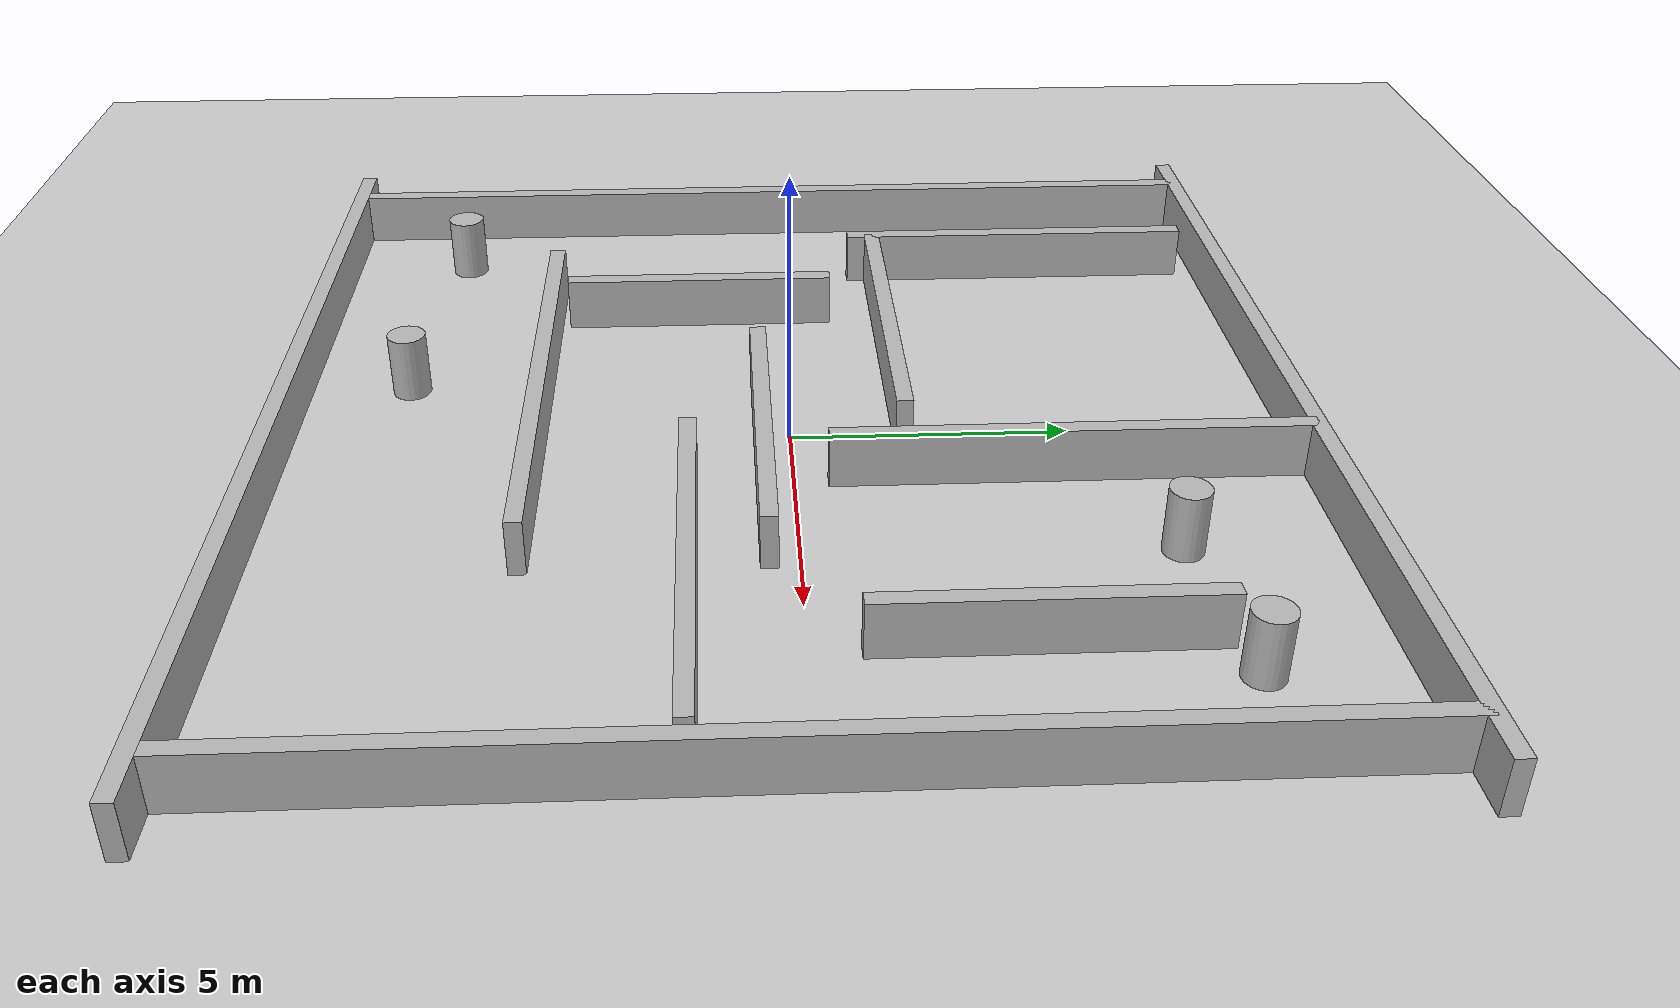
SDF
<?xml version="1.0" ?>
<sdf version="1.6">
  <world name="maze_ruins">
    <include><uri>model://ground_plane</uri></include>
    <include><uri>model://sun</uri></include>

    <physics name="default_physics" type="ode">
      <max_step_size>0.001</max_step_size>
      <real_time_update_rate>1000</real_time_update_rate>
    </physics>

    <model name="outer_walls">
      <static>true</static>
      <link name="walls">
        <collision name="north"><pose>0 9 0.5 0 0 0</pose><geometry><box><size>20 0.3 1.0</size></box></geometry></collision>
        <collision name="south"><pose>0 -9 0.5 0 0 0</pose><geometry><box><size>20 0.3 1.0</size></box></geometry></collision>
        <collision name="east"><pose>9 0 0.5 0 0 0</pose><geometry><box><size>0.3 18 1.0</size></box></geometry></collision>
        <collision name="west"><pose>-9 0 0.5 0 0 0</pose><geometry><box><size>0.3 18 1.0</size></box></geometry></collision>
        <visual name="north_v"><pose>0 9 0.5 0 0 0</pose><geometry><box><size>20 0.3 1.0</size></box></geometry></visual>
        <visual name="south_v"><pose>0 -9 0.5 0 0 0</pose><geometry><box><size>20 0.3 1.0</size></box></geometry></visual>
        <visual name="east_v"><pose>9 0 0.5 0 0 0</pose><geometry><box><size>0.3 18 1.0</size></box></geometry></visual>
        <visual name="west_v"><pose>-9 0 0.5 0 0 0</pose><geometry><box><size>0.3 18 1.0</size></box></geometry></visual>
      </link>
    </model>

    <model name="maze_segments">
      <static>true</static>
      <link name="segments">
        <collision name="m1"><pose>-6.5 5.0 0.5 0 0 0</pose><geometry><box><size>0.3 7.0 1.0</size></box></geometry></collision>
        <collision name="m2"><pose>-3.0 2.0 0.5 0 0 0</pose><geometry><box><size>7.0 0.3 1.0</size></box></geometry></collision>
        <collision name="m3"><pose>1.5 4.8 0.5 0 0 0</pose><geometry><box><size>0.3 8.4 1.0</size></box></geometry></collision>
        <collision name="m4"><pose>4.8 -1.8 0.5 0 0 0</pose><geometry><box><size>7.8 0.3 1.0</size></box></geometry></collision>
        <collision name="m5"><pose>-1.0 -4.5 0.5 0 0 0</pose><geometry><box><size>10.0 0.3 1.0</size></box></geometry></collision>
        <collision name="m6"><pose>-4.6 -1.6 0.5 0 0 0</pose><geometry><box><size>0.3 5.2 1.0</size></box></geometry></collision>
        <collision name="m7"><pose>6.2 3.6 0.5 0 0 0</pose><geometry><box><size>0.3 5.6 1.0</size></box></geometry></collision>
        <collision name="m8"><pose>0.8 -0.5 0.5 0 0 0</pose><geometry><box><size>6.4 0.3 1.0</size></box></geometry></collision>

        <visual name="m1v"><pose>-6.5 5.0 0.5 0 0 0</pose><geometry><box><size>0.3 7.0 1.0</size></box></geometry></visual>
        <visual name="m2v"><pose>-3.0 2.0 0.5 0 0 0</pose><geometry><box><size>7.0 0.3 1.0</size></box></geometry></visual>
        <visual name="m3v"><pose>1.5 4.8 0.5 0 0 0</pose><geometry><box><size>0.3 8.4 1.0</size></box></geometry></visual>
        <visual name="m4v"><pose>4.8 -1.8 0.5 0 0 0</pose><geometry><box><size>7.8 0.3 1.0</size></box></geometry></visual>
        <visual name="m5v"><pose>-1.0 -4.5 0.5 0 0 0</pose><geometry><box><size>10.0 0.3 1.0</size></box></geometry></visual>
        <visual name="m6v"><pose>-4.6 -1.6 0.5 0 0 0</pose><geometry><box><size>0.3 5.2 1.0</size></box></geometry></visual>
        <visual name="m7v"><pose>6.2 3.6 0.5 0 0 0</pose><geometry><box><size>0.3 5.6 1.0</size></box></geometry></visual>
        <visual name="m8v"><pose>0.8 -0.5 0.5 0 0 0</pose><geometry><box><size>6.4 0.3 1.0</size></box></geometry></visual>
      </link>
    </model>

    <model name="ruins_pillars">
      <static>true</static>
      <link name="pillars">
        <collision name="p1"><pose>-7.2 -6.5 0.6 0 0 0</pose><geometry><cylinder><radius>0.35</radius><length>1.2</length></cylinder></geometry></collision>
        <collision name="p2"><pose>7.0 6.6 0.6 0 0 0</pose><geometry><cylinder><radius>0.35</radius><length>1.2</length></cylinder></geometry></collision>
        <collision name="p3"><pose>3.8 6.2 0.6 0 0 0</pose><geometry><cylinder><radius>0.35</radius><length>1.2</length></cylinder></geometry></collision>
        <collision name="p4"><pose>-2.0 -7.0 0.6 0 0 0</pose><geometry><cylinder><radius>0.35</radius><length>1.2</length></cylinder></geometry></collision>
        <visual name="p1v"><pose>-7.2 -6.5 0.6 0 0 0</pose><geometry><cylinder><radius>0.35</radius><length>1.2</length></cylinder></geometry></visual>
        <visual name="p2v"><pose>7.0 6.6 0.6 0 0 0</pose><geometry><cylinder><radius>0.35</radius><length>1.2</length></cylinder></geometry></visual>
        <visual name="p3v"><pose>3.8 6.2 0.6 0 0 0</pose><geometry><cylinder><radius>0.35</radius><length>1.2</length></cylinder></geometry></visual>
        <visual name="p4v"><pose>-2.0 -7.0 0.6 0 0 0</pose><geometry><cylinder><radius>0.35</radius><length>1.2</length></cylinder></geometry></visual>
      </link>
    </model>
  </world>
</sdf>
